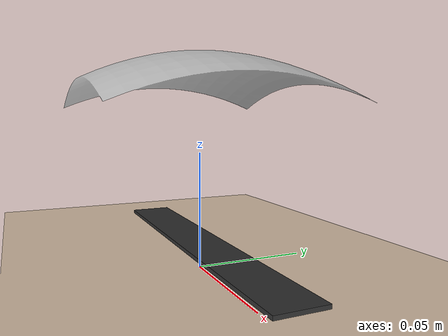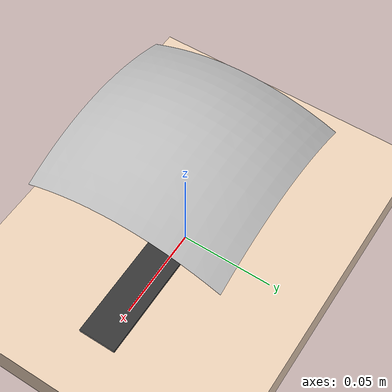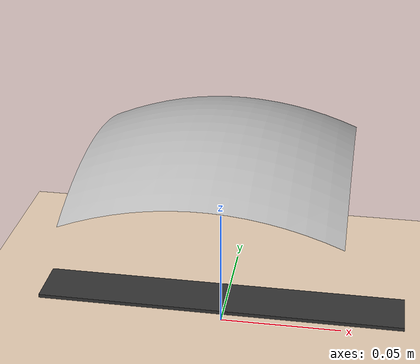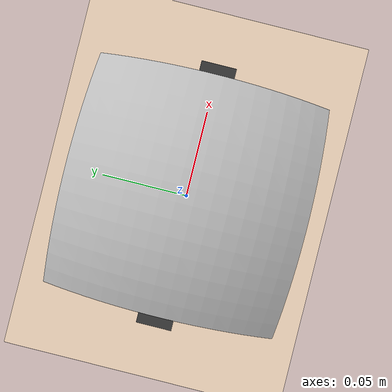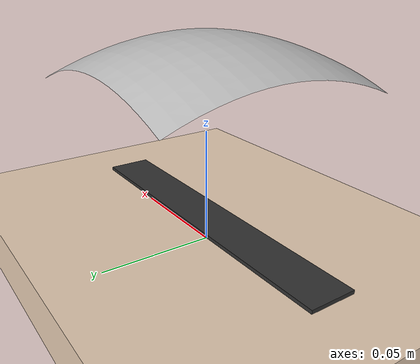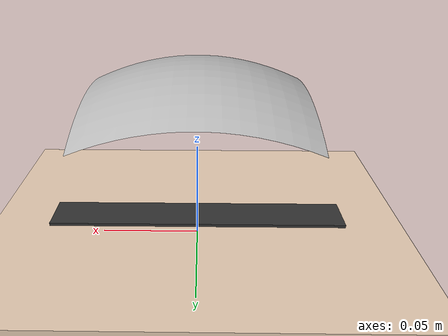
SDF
<?xml version="1.0"?>
<sdf version="1.7" xmlns:drake="http://drake.mit.edu">
  <model name="plate_and_spatula">
    <!-- The table is fixed to the world -->
    <link name="table">
      <inertial>
        <inertia>
          <ixx>0.12003</ixx>
          <ixy>0</ixy>
          <ixz>0</ixz>
          <iyy>0.12003</iyy>
          <iyz>0</iyz>
          <izz>0.24</izz>
        </inertia>
        <mass>1</mass>
        <pose>0 0 0 0 0 0</pose>
      </inertial>
      <visual name="table_visual">
        <pose>0 0 0 0 0 0</pose>
        <geometry>
          <box>
            <size>1.2 1.2 0.02</size>
          </box>
        </geometry>
        <material>
          <diffuse>0.9 0.8 0.7 1</diffuse>
        </material>
      </visual>
      <collision name="table_collision">
        <pose>0 0 0 0 0 0</pose>
        <geometry>
          <box>
            <size>1.2 1.2 0.02</size>
          </box>
        </geometry>
      </collision>
    </link>
    <joint name="table_joint" type="fixed">
      <parent>world</parent>
      <child>table</child>
    </joint>

    <!-- The free-floating plate-->
    <link name="plate_8in">
      <pose>0 0 0 0 0 0</pose>
      <inertial>
        <pose>-2.8414e-08 -1.0184e-08 0.07 0 0 0</pose>
        <mass>0.375</mass>
        <inertia>
          <ixx>0.0007666</ixx>
          <ixy>2.0415e-10</ixy>
          <ixz>5.0074e-11</ixz>
          <iyy>0.0007666</iyy>
          <iyz>1.2488e-11</iyz>
          <izz>0.0015217</izz>
        </inertia>
      </inertial>
      <visual name="visual">
        <pose>0 0 0 0 0 0</pose>
        <geometry>
          <mesh>
            <uri>package://drake/examples/integrators/shell.obj</uri>
            <scale>0.1 0.1 0.1</scale>
          </mesh>
        </geometry>
      </visual>
      <collision name="collision">
        <pose>0 0 0 0 0 0</pose>
        <geometry>
          <mesh>
            <uri>package://drake/examples/integrators/shell.obj</uri>
            <scale>0.1 0.1 0.1</scale>
          </mesh>
        </geometry>
      </collision>
    </link>

    <!-- The free-floating spatula above the plate -->
    <link name="spatula">
      <pose>0 0 0.01 0 0 0</pose>
      <inertial>
        <pose>0 0 0 0 0 0</pose>
        <mass>0.1</mass>
        <inertia>
          <ixx>3.4083e-06</ixx>
          <ixy>0</ixy>
          <ixz>0</ixz>
          <iyy>0.00018757</iyy>
          <iyz>0</iyz>
          <izz>0.00019083</izz>
        </inertia>
      </inertial>
      <visual name="visual">
        <pose>0 0 0 0 0 0</pose>
        <geometry>
          <box>
            <size>0.15 0.02 0.003</size>
          </box>
        </geometry>
        <material>
          <diffuse>0.2 0.2 0.2 1</diffuse>
        </material>
      </visual>
      <collision name="collision">
        <pose>0 0 0 0 0 0</pose>
        <geometry>
          <box>
            <size>0.15 0.02 0.003</size>
          </box>
        </geometry>
      </collision>
    </link>

    <!-- The free-floating plate-->
    <link name="plate_8in_2">
      <pose>0 0 0 0 0 0</pose>
      <inertial>
        <pose>-2.8414e-08 -1.0184e-08 0.07 0 0 0</pose>
        <mass>0.375</mass>
        <inertia>
          <ixx>0.0007666</ixx>
          <ixy>2.0415e-10</ixy>
          <ixz>5.0074e-11</ixz>
          <iyy>0.0007666</iyy>
          <iyz>1.2488e-11</iyz>
          <izz>0.0015217</izz>
        </inertia>
      </inertial>
      <visual name="visual">
        <pose>0 0 0 0 0 0</pose>
        <geometry>
          <mesh>
            <uri>package://drake/examples/integrators/shell.obj</uri>
            <scale>0.1 0.1 0.1</scale>
          </mesh>
        </geometry>
      </visual>
      <collision name="collision">
        <pose>0 0 0 0 0 0</pose>
        <geometry>
          <mesh>
            <uri>package://drake/examples/integrators/shell.obj</uri>
            <scale>0.1 0.1 0.1</scale>
          </mesh>
        </geometry>
      </collision>
    </link>

  </model>
</sdf>
